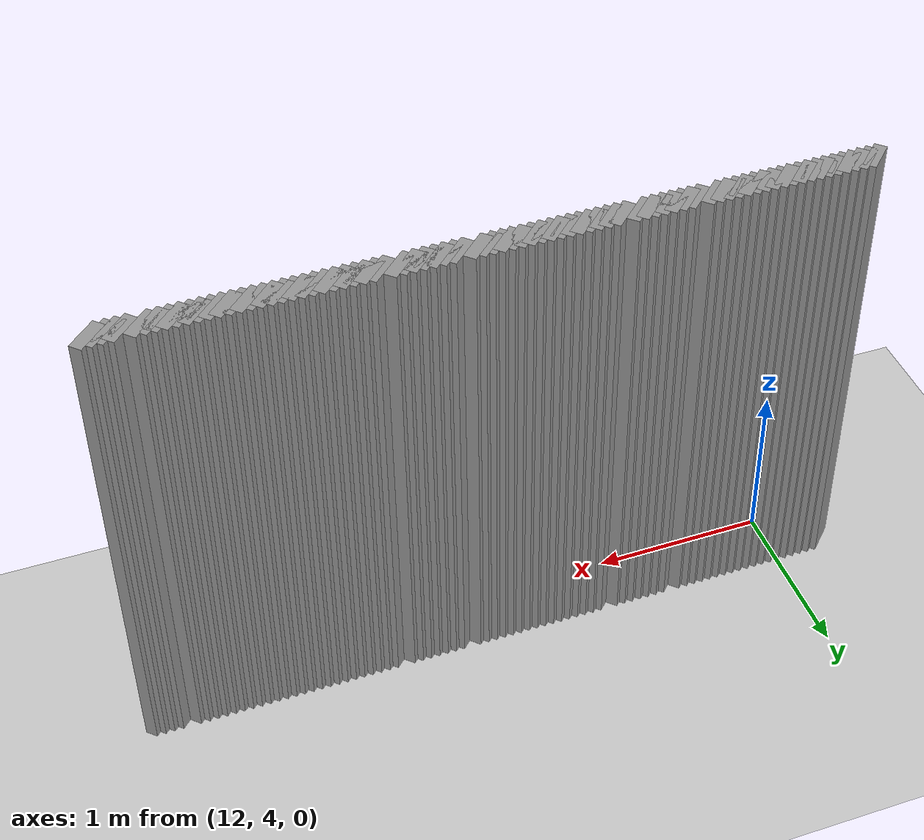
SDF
<sdf version="1.5">
 <world name="default">
  <include><uri>model://ground_plane</uri></include>
  <include><uri>model://sun</uri></include>
  <model name="grey_wall_2256">
   <static>1</static>
   <link name="link">
    <pose>11.7 4.25  1.4 0 0 -0.785398163397</pose>
    <collision name="collision"><geometry><box><size>0.0707106781187 .2  2.8</size></box></geometry></collision>
    <visual name="visual">
     <cast_shadows>0</cast_shadows>
     <geometry><box><size>0.0707106781187 .2  2.8</size></box></geometry>
     <material>
      <script>
       <uri>model://grey_wall/materials/scripts</uri>
       <uri>model://grey_wall/materials/textures</uri>
       <name>vrc/grey_wall</name>
      </script>
     </material>
    </visual>
   </link>
  </model>
  <model name="grey_wall_2257">
   <static>1</static>
   <link name="link">
    <pose>11.75 4.25  1.4 0 0 -0.785398163397</pose>
    <collision name="collision"><geometry><box><size>0.0707106781187 .2  2.8</size></box></geometry></collision>
    <visual name="visual">
     <cast_shadows>0</cast_shadows>
     <geometry><box><size>0.0707106781187 .2  2.8</size></box></geometry>
     <material>
      <script>
       <uri>model://grey_wall/materials/scripts</uri>
       <uri>model://grey_wall/materials/textures</uri>
       <name>vrc/grey_wall</name>
      </script>
     </material>
    </visual>
   </link>
  </model>
  <model name="grey_wall_2258">
   <static>1</static>
   <link name="link">
    <pose>11.8 4.25  1.4 0 0 -0.785398163397</pose>
    <collision name="collision"><geometry><box><size>0.0707106781187 .2  2.8</size></box></geometry></collision>
    <visual name="visual">
     <cast_shadows>0</cast_shadows>
     <geometry><box><size>0.0707106781187 .2  2.8</size></box></geometry>
     <material>
      <script>
       <uri>model://grey_wall/materials/scripts</uri>
       <uri>model://grey_wall/materials/textures</uri>
       <name>vrc/grey_wall</name>
      </script>
     </material>
    </visual>
   </link>
  </model>
  <model name="grey_wall_2259">
   <static>1</static>
   <link name="link">
    <pose>11.85 4.25  1.4 0 0 -0.785398163397</pose>
    <collision name="collision"><geometry><box><size>0.0707106781187 .2  2.8</size></box></geometry></collision>
    <visual name="visual">
     <cast_shadows>0</cast_shadows>
     <geometry><box><size>0.0707106781187 .2  2.8</size></box></geometry>
     <material>
      <script>
       <uri>model://grey_wall/materials/scripts</uri>
       <uri>model://grey_wall/materials/textures</uri>
       <name>vrc/grey_wall</name>
      </script>
     </material>
    </visual>
   </link>
  </model>
  <model name="grey_wall_2260">
   <static>1</static>
   <link name="link">
    <pose>11.9 4.25  1.4 0 0 -0.785398163397</pose>
    <collision name="collision"><geometry><box><size>0.0707106781187 .2  2.8</size></box></geometry></collision>
    <visual name="visual">
     <cast_shadows>0</cast_shadows>
     <geometry><box><size>0.0707106781187 .2  2.8</size></box></geometry>
     <material>
      <script>
       <uri>model://grey_wall/materials/scripts</uri>
       <uri>model://grey_wall/materials/textures</uri>
       <name>vrc/grey_wall</name>
      </script>
     </material>
    </visual>
   </link>
  </model>
  <model name="grey_wall_2261">
   <static>1</static>
   <link name="link">
    <pose>11.95 4.25  1.4 0 0 -0.785398163397</pose>
    <collision name="collision"><geometry><box><size>0.0707106781187 .2  2.8</size></box></geometry></collision>
    <visual name="visual">
     <cast_shadows>0</cast_shadows>
     <geometry><box><size>0.0707106781187 .2  2.8</size></box></geometry>
     <material>
      <script>
       <uri>model://grey_wall/materials/scripts</uri>
       <uri>model://grey_wall/materials/textures</uri>
       <name>vrc/grey_wall</name>
      </script>
     </material>
    </visual>
   </link>
  </model>
  <model name="grey_wall_2262">
   <static>1</static>
   <link name="link">
    <pose>12.0 4.25  1.4 0 0 -0.785398163397</pose>
    <collision name="collision"><geometry><box><size>0.0707106781187 .2  2.8</size></box></geometry></collision>
    <visual name="visual">
     <cast_shadows>0</cast_shadows>
     <geometry><box><size>0.0707106781187 .2  2.8</size></box></geometry>
     <material>
      <script>
       <uri>model://grey_wall/materials/scripts</uri>
       <uri>model://grey_wall/materials/textures</uri>
       <name>vrc/grey_wall</name>
      </script>
     </material>
    </visual>
   </link>
  </model>
  <model name="grey_wall_2263">
   <static>1</static>
   <link name="link">
    <pose>12.05 4.25  1.4 0 0 -0.785398163397</pose>
    <collision name="collision"><geometry><box><size>0.0707106781187 .2  2.8</size></box></geometry></collision>
    <visual name="visual">
     <cast_shadows>0</cast_shadows>
     <geometry><box><size>0.0707106781187 .2  2.8</size></box></geometry>
     <material>
      <script>
       <uri>model://grey_wall/materials/scripts</uri>
       <uri>model://grey_wall/materials/textures</uri>
       <name>vrc/grey_wall</name>
      </script>
     </material>
    </visual>
   </link>
  </model>
  <model name="grey_wall_2264">
   <static>1</static>
   <link name="link">
    <pose>12.1 4.25  1.4 0 0 -0.785398163397</pose>
    <collision name="collision"><geometry><box><size>0.0707106781187 .2  2.8</size></box></geometry></collision>
    <visual name="visual">
     <cast_shadows>0</cast_shadows>
     <geometry><box><size>0.0707106781187 .2  2.8</size></box></geometry>
     <material>
      <script>
       <uri>model://grey_wall/materials/scripts</uri>
       <uri>model://grey_wall/materials/textures</uri>
       <name>vrc/grey_wall</name>
      </script>
     </material>
    </visual>
   </link>
  </model>
  <model name="grey_wall_2265">
   <static>1</static>
   <link name="link">
    <pose>12.15 4.25  1.4 0 0 -0.785398163397</pose>
    <collision name="collision"><geometry><box><size>0.0707106781187 .2  2.8</size></box></geometry></collision>
    <visual name="visual">
     <cast_shadows>0</cast_shadows>
     <geometry><box><size>0.0707106781187 .2  2.8</size></box></geometry>
     <material>
      <script>
       <uri>model://grey_wall/materials/scripts</uri>
       <uri>model://grey_wall/materials/textures</uri>
       <name>vrc/grey_wall</name>
      </script>
     </material>
    </visual>
   </link>
  </model>
  <model name="grey_wall_2266">
   <static>1</static>
   <link name="link">
    <pose>12.2 4.25  1.4 0 0 -0.785398163397</pose>
    <collision name="collision"><geometry><box><size>0.0707106781187 .2  2.8</size></box></geometry></collision>
    <visual name="visual">
     <cast_shadows>0</cast_shadows>
     <geometry><box><size>0.0707106781187 .2  2.8</size></box></geometry>
     <material>
      <script>
       <uri>model://grey_wall/materials/scripts</uri>
       <uri>model://grey_wall/materials/textures</uri>
       <name>vrc/grey_wall</name>
      </script>
     </material>
    </visual>
   </link>
  </model>
  <model name="grey_wall_2267">
   <static>1</static>
   <link name="link">
    <pose>12.25 4.25  1.4 0 0 -0.785398163397</pose>
    <collision name="collision"><geometry><box><size>0.0707106781187 .2  2.8</size></box></geometry></collision>
    <visual name="visual">
     <cast_shadows>0</cast_shadows>
     <geometry><box><size>0.0707106781187 .2  2.8</size></box></geometry>
     <material>
      <script>
       <uri>model://grey_wall/materials/scripts</uri>
       <uri>model://grey_wall/materials/textures</uri>
       <name>vrc/grey_wall</name>
      </script>
     </material>
    </visual>
   </link>
  </model>
  <model name="grey_wall_2268">
   <static>1</static>
   <link name="link">
    <pose>12.3 4.25  1.4 0 0 -0.785398163397</pose>
    <collision name="collision"><geometry><box><size>0.0707106781187 .2  2.8</size></box></geometry></collision>
    <visual name="visual">
     <cast_shadows>0</cast_shadows>
     <geometry><box><size>0.0707106781187 .2  2.8</size></box></geometry>
     <material>
      <script>
       <uri>model://grey_wall/materials/scripts</uri>
       <uri>model://grey_wall/materials/textures</uri>
       <name>vrc/grey_wall</name>
      </script>
     </material>
    </visual>
   </link>
  </model>
  <model name="grey_wall_2269">
   <static>1</static>
   <link name="link">
    <pose>12.35 4.25  1.4 0 0 -0.785398163397</pose>
    <collision name="collision"><geometry><box><size>0.0707106781187 .2  2.8</size></box></geometry></collision>
    <visual name="visual">
     <cast_shadows>0</cast_shadows>
     <geometry><box><size>0.0707106781187 .2  2.8</size></box></geometry>
     <material>
      <script>
       <uri>model://grey_wall/materials/scripts</uri>
       <uri>model://grey_wall/materials/textures</uri>
       <name>vrc/grey_wall</name>
      </script>
     </material>
    </visual>
   </link>
  </model>
  <model name="grey_wall_2270">
   <static>1</static>
   <link name="link">
    <pose>12.4 4.25  1.4 0 0 -0.785398163397</pose>
    <collision name="collision"><geometry><box><size>0.0707106781187 .2  2.8</size></box></geometry></collision>
    <visual name="visual">
     <cast_shadows>0</cast_shadows>
     <geometry><box><size>0.0707106781187 .2  2.8</size></box></geometry>
     <material>
      <script>
       <uri>model://grey_wall/materials/scripts</uri>
       <uri>model://grey_wall/materials/textures</uri>
       <name>vrc/grey_wall</name>
      </script>
     </material>
    </visual>
   </link>
  </model>
  <model name="grey_wall_2271">
   <static>1</static>
   <link name="link">
    <pose>12.45 4.25  1.4 0 0 -0.785398163397</pose>
    <collision name="collision"><geometry><box><size>0.0707106781187 .2  2.8</size></box></geometry></collision>
    <visual name="visual">
     <cast_shadows>0</cast_shadows>
     <geometry><box><size>0.0707106781187 .2  2.8</size></box></geometry>
     <material>
      <script>
       <uri>model://grey_wall/materials/scripts</uri>
       <uri>model://grey_wall/materials/textures</uri>
       <name>vrc/grey_wall</name>
      </script>
     </material>
    </visual>
   </link>
  </model>
  <model name="grey_wall_2272">
   <static>1</static>
   <link name="link">
    <pose>12.5 4.25  1.4 0 0 -0.785398163397</pose>
    <collision name="collision"><geometry><box><size>0.0707106781187 .2  2.8</size></box></geometry></collision>
    <visual name="visual">
     <cast_shadows>0</cast_shadows>
     <geometry><box><size>0.0707106781187 .2  2.8</size></box></geometry>
     <material>
      <script>
       <uri>model://grey_wall/materials/scripts</uri>
       <uri>model://grey_wall/materials/textures</uri>
       <name>vrc/grey_wall</name>
      </script>
     </material>
    </visual>
   </link>
  </model>
  <model name="grey_wall_2273">
   <static>1</static>
   <link name="link">
    <pose>12.55 4.25  1.4 0 0 -0.785398163397</pose>
    <collision name="collision"><geometry><box><size>0.0707106781187 .2  2.8</size></box></geometry></collision>
    <visual name="visual">
     <cast_shadows>0</cast_shadows>
     <geometry><box><size>0.0707106781187 .2  2.8</size></box></geometry>
     <material>
      <script>
       <uri>model://grey_wall/materials/scripts</uri>
       <uri>model://grey_wall/materials/textures</uri>
       <name>vrc/grey_wall</name>
      </script>
     </material>
    </visual>
   </link>
  </model>
  <model name="grey_wall_2274">
   <static>1</static>
   <link name="link">
    <pose>12.6 4.25  1.4 0 0 -0.785398163397</pose>
    <collision name="collision"><geometry><box><size>0.0707106781187 .2  2.8</size></box></geometry></collision>
    <visual name="visual">
     <cast_shadows>0</cast_shadows>
     <geometry><box><size>0.0707106781187 .2  2.8</size></box></geometry>
     <material>
      <script>
       <uri>model://grey_wall/materials/scripts</uri>
       <uri>model://grey_wall/materials/textures</uri>
       <name>vrc/grey_wall</name>
      </script>
     </material>
    </visual>
   </link>
  </model>
  <model name="grey_wall_2275">
   <static>1</static>
   <link name="link">
    <pose>12.7 4.25  1.4 0 0 -0.785398163397</pose>
    <collision name="collision"><geometry><box><size>0.0707106781187 .2  2.8</size></box></geometry></collision>
    <visual name="visual">
     <cast_shadows>0</cast_shadows>
     <geometry><box><size>0.0707106781187 .2  2.8</size></box></geometry>
     <material>
      <script>
       <uri>model://grey_wall/materials/scripts</uri>
       <uri>model://grey_wall/materials/textures</uri>
       <name>vrc/grey_wall</name>
      </script>
     </material>
    </visual>
   </link>
  </model>
  <model name="grey_wall_2276">
   <static>1</static>
   <link name="link">
    <pose>12.75 4.25  1.4 0 0 -0.785398163397</pose>
    <collision name="collision"><geometry><box><size>0.0707106781187 .2  2.8</size></box></geometry></collision>
    <visual name="visual">
     <cast_shadows>0</cast_shadows>
     <geometry><box><size>0.0707106781187 .2  2.8</size></box></geometry>
     <material>
      <script>
       <uri>model://grey_wall/materials/scripts</uri>
       <uri>model://grey_wall/materials/textures</uri>
       <name>vrc/grey_wall</name>
      </script>
     </material>
    </visual>
   </link>
  </model>
  <model name="grey_wall_2277">
   <static>1</static>
   <link name="link">
    <pose>12.8 4.25  1.4 0 0 -0.785398163397</pose>
    <collision name="collision"><geometry><box><size>0.0707106781187 .2  2.8</size></box></geometry></collision>
    <visual name="visual">
     <cast_shadows>0</cast_shadows>
     <geometry><box><size>0.0707106781187 .2  2.8</size></box></geometry>
     <material>
      <script>
       <uri>model://grey_wall/materials/scripts</uri>
       <uri>model://grey_wall/materials/textures</uri>
       <name>vrc/grey_wall</name>
      </script>
     </material>
    </visual>
   </link>
  </model>
  <model name="grey_wall_2278">
   <static>1</static>
   <link name="link">
    <pose>12.85 4.25  1.4 0 0 -0.785398163397</pose>
    <collision name="collision"><geometry><box><size>0.0707106781187 .2  2.8</size></box></geometry></collision>
    <visual name="visual">
     <cast_shadows>0</cast_shadows>
     <geometry><box><size>0.0707106781187 .2  2.8</size></box></geometry>
     <material>
      <script>
       <uri>model://grey_wall/materials/scripts</uri>
       <uri>model://grey_wall/materials/textures</uri>
       <name>vrc/grey_wall</name>
      </script>
     </material>
    </visual>
   </link>
  </model>
  <model name="grey_wall_2279">
   <static>1</static>
   <link name="link">
    <pose>12.9 4.25  1.4 0 0 -0.785398163397</pose>
    <collision name="collision"><geometry><box><size>0.0707106781187 .2  2.8</size></box></geometry></collision>
    <visual name="visual">
     <cast_shadows>0</cast_shadows>
     <geometry><box><size>0.0707106781187 .2  2.8</size></box></geometry>
     <material>
      <script>
       <uri>model://grey_wall/materials/scripts</uri>
       <uri>model://grey_wall/materials/textures</uri>
       <name>vrc/grey_wall</name>
      </script>
     </material>
    </visual>
   </link>
  </model>
  <model name="grey_wall_2280">
   <static>1</static>
   <link name="link">
    <pose>12.95 4.25  1.4 0 0 -0.785398163397</pose>
    <collision name="collision"><geometry><box><size>0.0707106781187 .2  2.8</size></box></geometry></collision>
    <visual name="visual">
     <cast_shadows>0</cast_shadows>
     <geometry><box><size>0.0707106781187 .2  2.8</size></box></geometry>
     <material>
      <script>
       <uri>model://grey_wall/materials/scripts</uri>
       <uri>model://grey_wall/materials/textures</uri>
       <name>vrc/grey_wall</name>
      </script>
     </material>
    </visual>
   </link>
  </model>
  <model name="grey_wall_2281">
   <static>1</static>
   <link name="link">
    <pose>13.0 4.25  1.4 0 0 -0.785398163397</pose>
    <collision name="collision"><geometry><box><size>0.0707106781187 .2  2.8</size></box></geometry></collision>
    <visual name="visual">
     <cast_shadows>0</cast_shadows>
     <geometry><box><size>0.0707106781187 .2  2.8</size></box></geometry>
     <material>
      <script>
       <uri>model://grey_wall/materials/scripts</uri>
       <uri>model://grey_wall/materials/textures</uri>
       <name>vrc/grey_wall</name>
      </script>
     </material>
    </visual>
   </link>
  </model>
  <model name="grey_wall_2282">
   <static>1</static>
   <link name="link">
    <pose>13.1 4.25  1.4 0 0 -0.785398163397</pose>
    <collision name="collision"><geometry><box><size>0.0707106781187 .2  2.8</size></box></geometry></collision>
    <visual name="visual">
     <cast_shadows>0</cast_shadows>
     <geometry><box><size>0.0707106781187 .2  2.8</size></box></geometry>
     <material>
      <script>
       <uri>model://grey_wall/materials/scripts</uri>
       <uri>model://grey_wall/materials/textures</uri>
       <name>vrc/grey_wall</name>
      </script>
     </material>
    </visual>
   </link>
  </model>
  <model name="grey_wall_2283">
   <static>1</static>
   <link name="link">
    <pose>13.15 4.25  1.4 0 0 -0.785398163397</pose>
    <collision name="collision"><geometry><box><size>0.0707106781187 .2  2.8</size></box></geometry></collision>
    <visual name="visual">
     <cast_shadows>0</cast_shadows>
     <geometry><box><size>0.0707106781187 .2  2.8</size></box></geometry>
     <material>
      <script>
       <uri>model://grey_wall/materials/scripts</uri>
       <uri>model://grey_wall/materials/textures</uri>
       <name>vrc/grey_wall</name>
      </script>
     </material>
    </visual>
   </link>
  </model>
  <model name="grey_wall_2284">
   <static>1</static>
   <link name="link">
    <pose>13.2 4.25  1.4 0 0 -0.785398163397</pose>
    <collision name="collision"><geometry><box><size>0.0707106781187 .2  2.8</size></box></geometry></collision>
    <visual name="visual">
     <cast_shadows>0</cast_shadows>
     <geometry><box><size>0.0707106781187 .2  2.8</size></box></geometry>
     <material>
      <script>
       <uri>model://grey_wall/materials/scripts</uri>
       <uri>model://grey_wall/materials/textures</uri>
       <name>vrc/grey_wall</name>
      </script>
     </material>
    </visual>
   </link>
  </model>
  <model name="grey_wall_2285">
   <static>1</static>
   <link name="link">
    <pose>13.25 4.25  1.4 0 0 -0.785398163397</pose>
    <collision name="collision"><geometry><box><size>0.0707106781187 .2  2.8</size></box></geometry></collision>
    <visual name="visual">
     <cast_shadows>0</cast_shadows>
     <geometry><box><size>0.0707106781187 .2  2.8</size></box></geometry>
     <material>
      <script>
       <uri>model://grey_wall/materials/scripts</uri>
       <uri>model://grey_wall/materials/textures</uri>
       <name>vrc/grey_wall</name>
      </script>
     </material>
    </visual>
   </link>
  </model>
  <model name="grey_wall_2286">
   <static>1</static>
   <link name="link">
    <pose>13.3 4.25  1.4 0 0 -0.785398163397</pose>
    <collision name="collision"><geometry><box><size>0.0707106781187 .2  2.8</size></box></geometry></collision>
    <visual name="visual">
     <cast_shadows>0</cast_shadows>
     <geometry><box><size>0.0707106781187 .2  2.8</size></box></geometry>
     <material>
      <script>
       <uri>model://grey_wall/materials/scripts</uri>
       <uri>model://grey_wall/materials/textures</uri>
       <name>vrc/grey_wall</name>
      </script>
     </material>
    </visual>
   </link>
  </model>
  <model name="grey_wall_2287">
   <static>1</static>
   <link name="link">
    <pose>13.35 4.25  1.4 0 0 -0.785398163397</pose>
    <collision name="collision"><geometry><box><size>0.0707106781187 .2  2.8</size></box></geometry></collision>
    <visual name="visual">
     <cast_shadows>0</cast_shadows>
     <geometry><box><size>0.0707106781187 .2  2.8</size></box></geometry>
     <material>
      <script>
       <uri>model://grey_wall/materials/scripts</uri>
       <uri>model://grey_wall/materials/textures</uri>
       <name>vrc/grey_wall</name>
      </script>
     </material>
    </visual>
   </link>
  </model>
  <model name="grey_wall_2288">
   <static>1</static>
   <link name="link">
    <pose>13.4 4.25  1.4 0 0 -0.785398163397</pose>
    <collision name="collision"><geometry><box><size>0.0707106781187 .2  2.8</size></box></geometry></collision>
    <visual name="visual">
     <cast_shadows>0</cast_shadows>
     <geometry><box><size>0.0707106781187 .2  2.8</size></box></geometry>
     <material>
      <script>
       <uri>model://grey_wall/materials/scripts</uri>
       <uri>model://grey_wall/materials/textures</uri>
       <name>vrc/grey_wall</name>
      </script>
     </material>
    </visual>
   </link>
  </model>
  <model name="grey_wall_2289">
   <static>1</static>
   <link name="link">
    <pose>13.45 4.25  1.4 0 0 -0.785398163397</pose>
    <collision name="collision"><geometry><box><size>0.0707106781187 .2  2.8</size></box></geometry></collision>
    <visual name="visual">
     <cast_shadows>0</cast_shadows>
     <geometry><box><size>0.0707106781187 .2  2.8</size></box></geometry>
     <material>
      <script>
       <uri>model://grey_wall/materials/scripts</uri>
       <uri>model://grey_wall/materials/textures</uri>
       <name>vrc/grey_wall</name>
      </script>
     </material>
    </visual>
   </link>
  </model>
  <model name="grey_wall_2290">
   <static>1</static>
   <link name="link">
    <pose>13.5 4.25  1.4 0 0 -0.785398163397</pose>
    <collision name="collision"><geometry><box><size>0.0707106781187 .2  2.8</size></box></geometry></collision>
    <visual name="visual">
     <cast_shadows>0</cast_shadows>
     <geometry><box><size>0.0707106781187 .2  2.8</size></box></geometry>
     <material>
      <script>
       <uri>model://grey_wall/materials/scripts</uri>
       <uri>model://grey_wall/materials/textures</uri>
       <name>vrc/grey_wall</name>
      </script>
     </material>
    </visual>
   </link>
  </model>
  <model name="grey_wall_2291">
   <static>1</static>
   <link name="link">
    <pose>13.55 4.25  1.4 0 0 -0.785398163397</pose>
    <collision name="collision"><geometry><box><size>0.0707106781187 .2  2.8</size></box></geometry></collision>
    <visual name="visual">
     <cast_shadows>0</cast_shadows>
     <geometry><box><size>0.0707106781187 .2  2.8</size></box></geometry>
     <material>
      <script>
       <uri>model://grey_wall/materials/scripts</uri>
       <uri>model://grey_wall/materials/textures</uri>
       <name>vrc/grey_wall</name>
      </script>
     </material>
    </visual>
   </link>
  </model>
  <model name="grey_wall_2292">
   <static>1</static>
   <link name="link">
    <pose>13.6 4.25  1.4 0 0 -0.785398163397</pose>
    <collision name="collision"><geometry><box><size>0.0707106781187 .2  2.8</size></box></geometry></collision>
    <visual name="visual">
     <cast_shadows>0</cast_shadows>
     <geometry><box><size>0.0707106781187 .2  2.8</size></box></geometry>
     <material>
      <script>
       <uri>model://grey_wall/materials/scripts</uri>
       <uri>model://grey_wall/materials/textures</uri>
       <name>vrc/grey_wall</name>
      </script>
     </material>
    </visual>
   </link>
  </model>
  <model name="grey_wall_2293">
   <static>1</static>
   <link name="link">
    <pose>13.65 4.25  1.4 0 0 -0.785398163397</pose>
    <collision name="collision"><geometry><box><size>0.0707106781187 .2  2.8</size></box></geometry></collision>
    <visual name="visual">
     <cast_shadows>0</cast_shadows>
     <geometry><box><size>0.0707106781187 .2  2.8</size></box></geometry>
     <material>
      <script>
       <uri>model://grey_wall/materials/scripts</uri>
       <uri>model://grey_wall/materials/textures</uri>
       <name>vrc/grey_wall</name>
      </script>
     </material>
    </visual>
   </link>
  </model>
  <model name="grey_wall_2294">
   <static>1</static>
   <link name="link">
    <pose>13.7 4.25  1.4 0 0 -0.785398163397</pose>
    <collision name="collision"><geometry><box><size>0.0707106781187 .2  2.8</size></box></geometry></collision>
    <visual name="visual">
     <cast_shadows>0</cast_shadows>
     <geometry><box><size>0.0707106781187 .2  2.8</size></box></geometry>
     <material>
      <script>
       <uri>model://grey_wall/materials/scripts</uri>
       <uri>model://grey_wall/materials/textures</uri>
       <name>vrc/grey_wall</name>
      </script>
     </material>
    </visual>
   </link>
  </model>
  <model name="grey_wall_2295">
   <static>1</static>
   <link name="link">
    <pose>13.75 4.25  1.4 0 0 -0.785398163397</pose>
    <collision name="collision"><geometry><box><size>0.0707106781187 .2  2.8</size></box></geometry></collision>
    <visual name="visual">
     <cast_shadows>0</cast_shadows>
     <geometry><box><size>0.0707106781187 .2  2.8</size></box></geometry>
     <material>
      <script>
       <uri>model://grey_wall/materials/scripts</uri>
       <uri>model://grey_wall/materials/textures</uri>
       <name>vrc/grey_wall</name>
      </script>
     </material>
    </visual>
   </link>
  </model>
  <model name="grey_wall_2296">
   <static>1</static>
   <link name="link">
    <pose>13.8 4.25  1.4 0 0 -0.785398163397</pose>
    <collision name="collision"><geometry><box><size>0.0707106781187 .2  2.8</size></box></geometry></collision>
    <visual name="visual">
     <cast_shadows>0</cast_shadows>
     <geometry><box><size>0.0707106781187 .2  2.8</size></box></geometry>
     <material>
      <script>
       <uri>model://grey_wall/materials/scripts</uri>
       <uri>model://grey_wall/materials/textures</uri>
       <name>vrc/grey_wall</name>
      </script>
     </material>
    </visual>
   </link>
  </model>
  <model name="grey_wall_2297">
   <static>1</static>
   <link name="link">
    <pose>13.85 4.25  1.4 0 0 -0.785398163397</pose>
    <collision name="collision"><geometry><box><size>0.0707106781187 .2  2.8</size></box></geometry></collision>
    <visual name="visual">
     <cast_shadows>0</cast_shadows>
     <geometry><box><size>0.0707106781187 .2  2.8</size></box></geometry>
     <material>
      <script>
       <uri>model://grey_wall/materials/scripts</uri>
       <uri>model://grey_wall/materials/textures</uri>
       <name>vrc/grey_wall</name>
      </script>
     </material>
    </visual>
   </link>
  </model>
  <model name="grey_wall_2298">
   <static>1</static>
   <link name="link">
    <pose>13.95 4.25  1.4 0 0 -0.785398163397</pose>
    <collision name="collision"><geometry><box><size>0.0707106781187 .2  2.8</size></box></geometry></collision>
    <visual name="visual">
     <cast_shadows>0</cast_shadows>
     <geometry><box><size>0.0707106781187 .2  2.8</size></box></geometry>
     <material>
      <script>
       <uri>model://grey_wall/materials/scripts</uri>
       <uri>model://grey_wall/materials/textures</uri>
       <name>vrc/grey_wall</name>
      </script>
     </material>
    </visual>
   </link>
  </model>
  <model name="grey_wall_2299">
   <static>1</static>
   <link name="link">
    <pose>14.0 4.25  1.4 0 0 -0.785398163397</pose>
    <collision name="collision"><geometry><box><size>0.0707106781187 .2  2.8</size></box></geometry></collision>
    <visual name="visual">
     <cast_shadows>0</cast_shadows>
     <geometry><box><size>0.0707106781187 .2  2.8</size></box></geometry>
     <material>
      <script>
       <uri>model://grey_wall/materials/scripts</uri>
       <uri>model://grey_wall/materials/textures</uri>
       <name>vrc/grey_wall</name>
      </script>
     </material>
    </visual>
   </link>
  </model>
  <model name="grey_wall_2300">
   <static>1</static>
   <link name="link">
    <pose>14.05 4.25  1.4 0 0 -0.785398163397</pose>
    <collision name="collision"><geometry><box><size>0.0707106781187 .2  2.8</size></box></geometry></collision>
    <visual name="visual">
     <cast_shadows>0</cast_shadows>
     <geometry><box><size>0.0707106781187 .2  2.8</size></box></geometry>
     <material>
      <script>
       <uri>model://grey_wall/materials/scripts</uri>
       <uri>model://grey_wall/materials/textures</uri>
       <name>vrc/grey_wall</name>
      </script>
     </material>
    </visual>
   </link>
  </model>
  <model name="grey_wall_2301">
   <static>1</static>
   <link name="link">
    <pose>14.1 4.25  1.4 0 0 -0.785398163397</pose>
    <collision name="collision"><geometry><box><size>0.0707106781187 .2  2.8</size></box></geometry></collision>
    <visual name="visual">
     <cast_shadows>0</cast_shadows>
     <geometry><box><size>0.0707106781187 .2  2.8</size></box></geometry>
     <material>
      <script>
       <uri>model://grey_wall/materials/scripts</uri>
       <uri>model://grey_wall/materials/textures</uri>
       <name>vrc/grey_wall</name>
      </script>
     </material>
    </visual>
   </link>
  </model>
  <model name="grey_wall_2302">
   <static>1</static>
   <link name="link">
    <pose>14.15 4.25  1.4 0 0 -0.785398163397</pose>
    <collision name="collision"><geometry><box><size>0.0707106781187 .2  2.8</size></box></geometry></collision>
    <visual name="visual">
     <cast_shadows>0</cast_shadows>
     <geometry><box><size>0.0707106781187 .2  2.8</size></box></geometry>
     <material>
      <script>
       <uri>model://grey_wall/materials/scripts</uri>
       <uri>model://grey_wall/materials/textures</uri>
       <name>vrc/grey_wall</name>
      </script>
     </material>
    </visual>
   </link>
  </model>
  <model name="grey_wall_2303">
   <static>1</static>
   <link name="link">
    <pose>14.2 4.25  1.4 0 0 -0.785398163397</pose>
    <collision name="collision"><geometry><box><size>0.0707106781187 .2  2.8</size></box></geometry></collision>
    <visual name="visual">
     <cast_shadows>0</cast_shadows>
     <geometry><box><size>0.0707106781187 .2  2.8</size></box></geometry>
     <material>
      <script>
       <uri>model://grey_wall/materials/scripts</uri>
       <uri>model://grey_wall/materials/textures</uri>
       <name>vrc/grey_wall</name>
      </script>
     </material>
    </visual>
   </link>
  </model>
  <model name="grey_wall_2304">
   <static>1</static>
   <link name="link">
    <pose>14.25 4.25  1.4 0 0 -0.785398163397</pose>
    <collision name="collision"><geometry><box><size>0.0707106781187 .2  2.8</size></box></geometry></collision>
    <visual name="visual">
     <cast_shadows>0</cast_shadows>
     <geometry><box><size>0.0707106781187 .2  2.8</size></box></geometry>
     <material>
      <script>
       <uri>model://grey_wall/materials/scripts</uri>
       <uri>model://grey_wall/materials/textures</uri>
       <name>vrc/grey_wall</name>
      </script>
     </material>
    </visual>
   </link>
  </model>
  <model name="grey_wall_2305">
   <static>1</static>
   <link name="link">
    <pose>14.35 4.25  1.4 0 0 -0.785398163397</pose>
    <collision name="collision"><geometry><box><size>0.0707106781187 .2  2.8</size></box></geometry></collision>
    <visual name="visual">
     <cast_shadows>0</cast_shadows>
     <geometry><box><size>0.0707106781187 .2  2.8</size></box></geometry>
     <material>
      <script>
       <uri>model://grey_wall/materials/scripts</uri>
       <uri>model://grey_wall/materials/textures</uri>
       <name>vrc/grey_wall</name>
      </script>
     </material>
    </visual>
   </link>
  </model>
  <model name="grey_wall_2306">
   <static>1</static>
   <link name="link">
    <pose>14.4 4.25  1.4 0 0 -0.785398163397</pose>
    <collision name="collision"><geometry><box><size>0.0707106781187 .2  2.8</size></box></geometry></collision>
    <visual name="visual">
     <cast_shadows>0</cast_shadows>
     <geometry><box><size>0.0707106781187 .2  2.8</size></box></geometry>
     <material>
      <script>
       <uri>model://grey_wall/materials/scripts</uri>
       <uri>model://grey_wall/materials/textures</uri>
       <name>vrc/grey_wall</name>
      </script>
     </material>
    </visual>
   </link>
  </model>
  <model name="grey_wall_2307">
   <static>1</static>
   <link name="link">
    <pose>14.45 4.25  1.4 0 0 -0.785398163397</pose>
    <collision name="collision"><geometry><box><size>0.0707106781187 .2  2.8</size></box></geometry></collision>
    <visual name="visual">
     <cast_shadows>0</cast_shadows>
     <geometry><box><size>0.0707106781187 .2  2.8</size></box></geometry>
     <material>
      <script>
       <uri>model://grey_wall/materials/scripts</uri>
       <uri>model://grey_wall/materials/textures</uri>
       <name>vrc/grey_wall</name>
      </script>
     </material>
    </visual>
   </link>
  </model>
  <model name="grey_wall_2308">
   <static>1</static>
   <link name="link">
    <pose>14.5 4.25  1.4 0 0 -0.785398163397</pose>
    <collision name="collision"><geometry><box><size>0.0707106781187 .2  2.8</size></box></geometry></collision>
    <visual name="visual">
     <cast_shadows>0</cast_shadows>
     <geometry><box><size>0.0707106781187 .2  2.8</size></box></geometry>
     <material>
      <script>
       <uri>model://grey_wall/materials/scripts</uri>
       <uri>model://grey_wall/materials/textures</uri>
       <name>vrc/grey_wall</name>
      </script>
     </material>
    </visual>
   </link>
  </model>
  <model name="grey_wall_2309">
   <static>1</static>
   <link name="link">
    <pose>14.55 4.25  1.4 0 0 -0.785398163397</pose>
    <collision name="collision"><geometry><box><size>0.0707106781187 .2  2.8</size></box></geometry></collision>
    <visual name="visual">
     <cast_shadows>0</cast_shadows>
     <geometry><box><size>0.0707106781187 .2  2.8</size></box></geometry>
     <material>
      <script>
       <uri>model://grey_wall/materials/scripts</uri>
       <uri>model://grey_wall/materials/textures</uri>
       <name>vrc/grey_wall</name>
      </script>
     </material>
    </visual>
   </link>
  </model>
  <model name="grey_wall_2310">
   <static>1</static>
   <link name="link">
    <pose>14.6 4.25  1.4 0 0 -0.785398163397</pose>
    <collision name="collision"><geometry><box><size>0.0707106781187 .2  2.8</size></box></geometry></collision>
    <visual name="visual">
     <cast_shadows>0</cast_shadows>
     <geometry><box><size>0.0707106781187 .2  2.8</size></box></geometry>
     <material>
      <script>
       <uri>model://grey_wall/materials/scripts</uri>
       <uri>model://grey_wall/materials/textures</uri>
       <name>vrc/grey_wall</name>
      </script>
     </material>
    </visual>
   </link>
  </model>
  <model name="grey_wall_2311">
   <static>1</static>
   <link name="link">
    <pose>14.65 4.25  1.4 0 0 -0.785398163397</pose>
    <collision name="collision"><geometry><box><size>0.0707106781187 .2  2.8</size></box></geometry></collision>
    <visual name="visual">
     <cast_shadows>0</cast_shadows>
     <geometry><box><size>0.0707106781187 .2  2.8</size></box></geometry>
     <material>
      <script>
       <uri>model://grey_wall/materials/scripts</uri>
       <uri>model://grey_wall/materials/textures</uri>
       <name>vrc/grey_wall</name>
      </script>
     </material>
    </visual>
   </link>
  </model>
  <model name="grey_wall_2312">
   <static>1</static>
   <link name="link">
    <pose>14.7 4.25  1.4 0 0 -0.785398163397</pose>
    <collision name="collision"><geometry><box><size>0.0707106781187 .2  2.8</size></box></geometry></collision>
    <visual name="visual">
     <cast_shadows>0</cast_shadows>
     <geometry><box><size>0.0707106781187 .2  2.8</size></box></geometry>
     <material>
      <script>
       <uri>model://grey_wall/materials/scripts</uri>
       <uri>model://grey_wall/materials/textures</uri>
       <name>vrc/grey_wall</name>
      </script>
     </material>
    </visual>
   </link>
  </model>
  <model name="grey_wall_2313">
   <static>1</static>
   <link name="link">
    <pose>14.75 4.25  1.4 0 0 -0.785398163397</pose>
    <collision name="collision"><geometry><box><size>0.0707106781187 .2  2.8</size></box></geometry></collision>
    <visual name="visual">
     <cast_shadows>0</cast_shadows>
     <geometry><box><size>0.0707106781187 .2  2.8</size></box></geometry>
     <material>
      <script>
       <uri>model://grey_wall/materials/scripts</uri>
       <uri>model://grey_wall/materials/textures</uri>
       <name>vrc/grey_wall</name>
      </script>
     </material>
    </visual>
   </link>
  </model>
  <model name="grey_wall_2314">
   <static>1</static>
   <link name="link">
    <pose>14.8 4.25  1.4 0 0 -0.785398163397</pose>
    <collision name="collision"><geometry><box><size>0.0707106781187 .2  2.8</size></box></geometry></collision>
    <visual name="visual">
     <cast_shadows>0</cast_shadows>
     <geometry><box><size>0.0707106781187 .2  2.8</size></box></geometry>
     <material>
      <script>
       <uri>model://grey_wall/materials/scripts</uri>
       <uri>model://grey_wall/materials/textures</uri>
       <name>vrc/grey_wall</name>
      </script>
     </material>
    </visual>
   </link>
  </model>
  <model name="grey_wall_2315">
   <static>1</static>
   <link name="link">
    <pose>14.85 4.25  1.4 0 0 -0.785398163397</pose>
    <collision name="collision"><geometry><box><size>0.0707106781187 .2  2.8</size></box></geometry></collision>
    <visual name="visual">
     <cast_shadows>0</cast_shadows>
     <geometry><box><size>0.0707106781187 .2  2.8</size></box></geometry>
     <material>
      <script>
       <uri>model://grey_wall/materials/scripts</uri>
       <uri>model://grey_wall/materials/textures</uri>
       <name>vrc/grey_wall</name>
      </script>
     </material>
    </visual>
   </link>
  </model>
  <model name="grey_wall_2316">
   <static>1</static>
   <link name="link">
    <pose>14.9 4.25  1.4 0 0 -0.785398163397</pose>
    <collision name="collision"><geometry><box><size>0.0707106781187 .2  2.8</size></box></geometry></collision>
    <visual name="visual">
     <cast_shadows>0</cast_shadows>
     <geometry><box><size>0.0707106781187 .2  2.8</size></box></geometry>
     <material>
      <script>
       <uri>model://grey_wall/materials/scripts</uri>
       <uri>model://grey_wall/materials/textures</uri>
       <name>vrc/grey_wall</name>
      </script>
     </material>
    </visual>
   </link>
  </model>
  <model name="grey_wall_2317">
   <static>1</static>
   <link name="link">
    <pose>14.95 4.25  1.4 0 0 -0.785398163397</pose>
    <collision name="collision"><geometry><box><size>0.0707106781187 .2  2.8</size></box></geometry></collision>
    <visual name="visual">
     <cast_shadows>0</cast_shadows>
     <geometry><box><size>0.0707106781187 .2  2.8</size></box></geometry>
     <material>
      <script>
       <uri>model://grey_wall/materials/scripts</uri>
       <uri>model://grey_wall/materials/textures</uri>
       <name>vrc/grey_wall</name>
      </script>
     </material>
    </visual>
   </link>
  </model>
  <model name="grey_wall_2318">
   <static>1</static>
   <link name="link">
    <pose>15.0 4.25  1.4 0 0 -0.785398163397</pose>
    <collision name="collision"><geometry><box><size>0.0707106781187 .2  2.8</size></box></geometry></collision>
    <visual name="visual">
     <cast_shadows>0</cast_shadows>
     <geometry><box><size>0.0707106781187 .2  2.8</size></box></geometry>
     <material>
      <script>
       <uri>model://grey_wall/materials/scripts</uri>
       <uri>model://grey_wall/materials/textures</uri>
       <name>vrc/grey_wall</name>
      </script>
     </material>
    </visual>
   </link>
  </model>
  <model name="grey_wall_2319">
   <static>1</static>
   <link name="link">
    <pose>15.05 4.25  1.4 0 0 -0.785398163397</pose>
    <collision name="collision"><geometry><box><size>0.0707106781187 .2  2.8</size></box></geometry></collision>
    <visual name="visual">
     <cast_shadows>0</cast_shadows>
     <geometry><box><size>0.0707106781187 .2  2.8</size></box></geometry>
     <material>
      <script>
       <uri>model://grey_wall/materials/scripts</uri>
       <uri>model://grey_wall/materials/textures</uri>
       <name>vrc/grey_wall</name>
      </script>
     </material>
    </visual>
   </link>
  </model>
  <model name="grey_wall_2320">
   <static>1</static>
   <link name="link">
    <pose>15.1 4.25  1.4 0 0 -0.785398163397</pose>
    <collision name="collision"><geometry><box><size>0.0707106781187 .2  2.8</size></box></geometry></collision>
    <visual name="visual">
     <cast_shadows>0</cast_shadows>
     <geometry><box><size>0.0707106781187 .2  2.8</size></box></geometry>
     <material>
      <script>
       <uri>model://grey_wall/materials/scripts</uri>
       <uri>model://grey_wall/materials/textures</uri>
       <name>vrc/grey_wall</name>
      </script>
     </material>
    </visual>
   </link>
  </model>
  <model name="grey_wall_2321">
   <static>1</static>
   <link name="link">
    <pose>15.15 4.25  1.4 0 0 -0.785398163397</pose>
    <collision name="collision"><geometry><box><size>0.0707106781187 .2  2.8</size></box></geometry></collision>
    <visual name="visual">
     <cast_shadows>0</cast_shadows>
     <geometry><box><size>0.0707106781187 .2  2.8</size></box></geometry>
     <material>
      <script>
       <uri>model://grey_wall/materials/scripts</uri>
       <uri>model://grey_wall/materials/textures</uri>
       <name>vrc/grey_wall</name>
      </script>
     </material>
    </visual>
   </link>
  </model>
  <model name="grey_wall_2322">
   <static>1</static>
   <link name="link">
    <pose>15.2 4.25  1.4 0 0 -0.785398163397</pose>
    <collision name="collision"><geometry><box><size>0.0707106781187 .2  2.8</size></box></geometry></collision>
    <visual name="visual">
     <cast_shadows>0</cast_shadows>
     <geometry><box><size>0.0707106781187 .2  2.8</size></box></geometry>
     <material>
      <script>
       <uri>model://grey_wall/materials/scripts</uri>
       <uri>model://grey_wall/materials/textures</uri>
       <name>vrc/grey_wall</name>
      </script>
     </material>
    </visual>
   </link>
  </model>
  <model name="grey_wall_2323">
   <static>1</static>
   <link name="link">
    <pose>15.25 4.25  1.4 0 0 -0.785398163397</pose>
    <collision name="collision"><geometry><box><size>0.0707106781187 .2  2.8</size></box></geometry></collision>
    <visual name="visual">
     <cast_shadows>0</cast_shadows>
     <geometry><box><size>0.0707106781187 .2  2.8</size></box></geometry>
     <material>
      <script>
       <uri>model://grey_wall/materials/scripts</uri>
       <uri>model://grey_wall/materials/textures</uri>
       <name>vrc/grey_wall</name>
      </script>
     </material>
    </visual>
   </link>
  </model>
  <model name="grey_wall_2324">
   <static>1</static>
   <link name="link">
    <pose>15.3 4.25  1.4 0 0 -0.785398163397</pose>
    <collision name="collision"><geometry><box><size>0.0707106781187 .2  2.8</size></box></geometry></collision>
    <visual name="visual">
     <cast_shadows>0</cast_shadows>
     <geometry><box><size>0.0707106781187 .2  2.8</size></box></geometry>
     <material>
      <script>
       <uri>model://grey_wall/materials/scripts</uri>
       <uri>model://grey_wall/materials/textures</uri>
       <name>vrc/grey_wall</name>
      </script>
     </material>
    </visual>
   </link>
  </model>
  <model name="grey_wall_2325">
   <static>1</static>
   <link name="link">
    <pose>15.35 4.25  1.4 0 0 -0.785398163397</pose>
    <collision name="collision"><geometry><box><size>0.0707106781187 .2  2.8</size></box></geometry></collision>
    <visual name="visual">
     <cast_shadows>0</cast_shadows>
     <geometry><box><size>0.0707106781187 .2  2.8</size></box></geometry>
     <material>
      <script>
       <uri>model://grey_wall/materials/scripts</uri>
       <uri>model://grey_wall/materials/textures</uri>
       <name>vrc/grey_wall</name>
      </script>
     </material>
    </visual>
   </link>
  </model>
  <model name="grey_wall_2326">
   <static>1</static>
   <link name="link">
    <pose>15.4 4.25  1.4 0 0 -0.785398163397</pose>
    <collision name="collision"><geometry><box><size>0.0707106781187 .2  2.8</size></box></geometry></collision>
    <visual name="visual">
     <cast_shadows>0</cast_shadows>
     <geometry><box><size>0.0707106781187 .2  2.8</size></box></geometry>
     <material>
      <script>
       <uri>model://grey_wall/materials/scripts</uri>
       <uri>model://grey_wall/materials/textures</uri>
       <name>vrc/grey_wall</name>
      </script>
     </material>
    </visual>
   </link>
  </model>
  <model name="grey_wall_2327">
   <static>1</static>
   <link name="link">
    <pose>15.45 4.25  1.4 0 0 -0.785398163397</pose>
    <collision name="collision"><geometry><box><size>0.0707106781187 .2  2.8</size></box></geometry></collision>
    <visual name="visual">
     <cast_shadows>0</cast_shadows>
     <geometry><box><size>0.0707106781187 .2  2.8</size></box></geometry>
     <material>
      <script>
       <uri>model://grey_wall/materials/scripts</uri>
       <uri>model://grey_wall/materials/textures</uri>
       <name>vrc/grey_wall</name>
      </script>
     </material>
    </visual>
   </link>
  </model>
  <model name="grey_wall_2328">
   <static>1</static>
   <link name="link">
    <pose>15.5 4.25  1.4 0 0 -0.785398163397</pose>
    <collision name="collision"><geometry><box><size>0.0707106781187 .2  2.8</size></box></geometry></collision>
    <visual name="visual">
     <cast_shadows>0</cast_shadows>
     <geometry><box><size>0.0707106781187 .2  2.8</size></box></geometry>
     <material>
      <script>
       <uri>model://grey_wall/materials/scripts</uri>
       <uri>model://grey_wall/materials/textures</uri>
       <name>vrc/grey_wall</name>
      </script>
     </material>
    </visual>
   </link>
  </model>
  <model name="grey_wall_2329">
   <static>1</static>
   <link name="link">
    <pose>15.6 4.25  1.4 0 0 -0.785398163397</pose>
    <collision name="collision"><geometry><box><size>0.0707106781187 .2  2.8</size></box></geometry></collision>
    <visual name="visual">
     <cast_shadows>0</cast_shadows>
     <geometry><box><size>0.0707106781187 .2  2.8</size></box></geometry>
     <material>
      <script>
       <uri>model://grey_wall/materials/scripts</uri>
       <uri>model://grey_wall/materials/textures</uri>
       <name>vrc/grey_wall</name>
      </script>
     </material>
    </visual>
   </link>
  </model>
  <model name="grey_wall_2330">
   <static>1</static>
   <link name="link">
    <pose>15.65 4.25  1.4 0 0 -0.785398163397</pose>
    <collision name="collision"><geometry><box><size>0.0707106781187 .2  2.8</size></box></geometry></collision>
    <visual name="visual">
     <cast_shadows>0</cast_shadows>
     <geometry><box><size>0.0707106781187 .2  2.8</size></box></geometry>
     <material>
      <script>
       <uri>model://grey_wall/materials/scripts</uri>
       <uri>model://grey_wall/materials/textures</uri>
       <name>vrc/grey_wall</name>
      </script>
     </material>
    </visual>
   </link>
  </model>
  <model name="grey_wall_2331">
   <static>1</static>
   <link name="link">
    <pose>15.7 4.25  1.4 0 0 -0.785398163397</pose>
    <collision name="collision"><geometry><box><size>0.0707106781187 .2  2.8</size></box></geometry></collision>
    <visual name="visual">
     <cast_shadows>0</cast_shadows>
     <geometry><box><size>0.0707106781187 .2  2.8</size></box></geometry>
     <material>
      <script>
       <uri>model://grey_wall/materials/scripts</uri>
       <uri>model://grey_wall/materials/textures</uri>
       <name>vrc/grey_wall</name>
      </script>
     </material>
    </visual>
   </link>
  </model>
  <model name="grey_wall_2332">
   <static>1</static>
   <link name="link">
    <pose>15.75 4.25  1.4 0 0 -0.785398163397</pose>
    <collision name="collision"><geometry><box><size>0.0707106781187 .2  2.8</size></box></geometry></collision>
    <visual name="visual">
     <cast_shadows>0</cast_shadows>
     <geometry><box><size>0.0707106781187 .2  2.8</size></box></geometry>
     <material>
      <script>
       <uri>model://grey_wall/materials/scripts</uri>
       <uri>model://grey_wall/materials/textures</uri>
       <name>vrc/grey_wall</name>
      </script>
     </material>
    </visual>
   </link>
  </model>
 </world>
</sdf>
